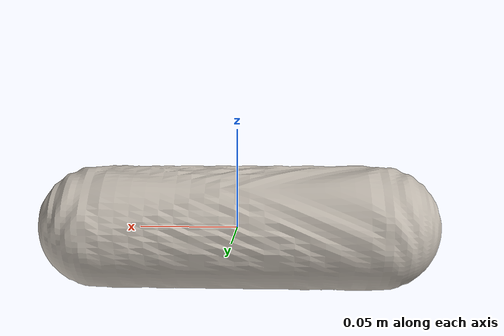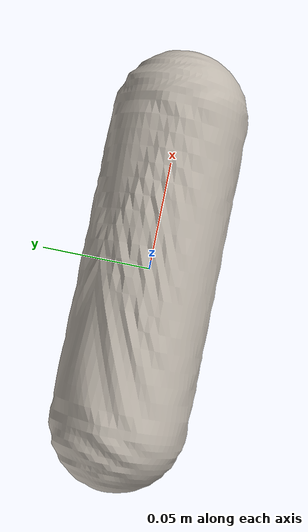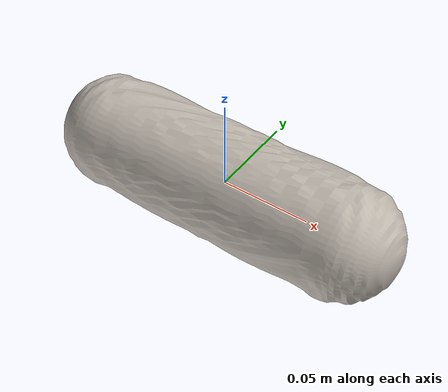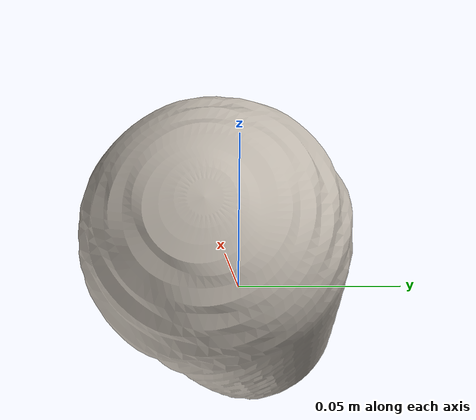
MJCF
<?xml version="1.0" ?>
<mujoco model="cold_cutting_1">
	<compiler angle="radian" meshdir="../meshes/" texturedir="../textures/" autolimits="true" inertiafromgeom="false"/>
	<default>
		<default class="cold_cutting_1_visual">
			<geom contype="0" conaffinity="0"/>
		</default>
		<default class="cold_cutting_1_collision">
			<geom rgba="0.9 0.9 0.9 0.0" />
		</default>
	</default>
	<asset>
		<mesh name="ColdCuttingMeat" file="obj/ColdCuttingMeat.obj" scale="1.0 1.0 1.0"/>
		<mesh name="ColdCuttingExodermis" file="obj/ColdCuttingExodermis.obj" scale="1.0 1.0 1.0"/>
		<material name="M_ColdCuttingMeat" texture="T_ColdCuttingMeat"/>
		<material name="M_ColdCuttingExodermis" texture="T_ColdCuttingExodermis"/>
		<texture name="T_ColdCuttingMeat" type="2d" file="T_ColdCuttingMeat.png"/>
		<texture name="T_ColdCuttingExodermis" type="2d" file="T_ColdCuttingExodermis.png"/>
	</asset>
	<asset>
		<mesh name="UCX_ColdCutting_001" file="stl/UCX_ColdCutting_001.stl" />
	</asset>
	<worldbody>
		<body name="cold_cutting_1" pos="0.0 0.0 0.0" quat="1.0 0.0 0.0 0.0">
			<freejoint />
			<body name="cold_cutting_meat" pos="0.0 0.0 0.0" quat="1.0 0.0 0.0 0.0">
				<inertial mass="0.5472894310951233" pos="-6.774790450858603e-11 -1.281197925528943e-10 -1.6847701012068228e-10" quat="0.9082376956939697 -0.418454647064209 -3.314617913474649e-08 -1.539701521835468e-08" diaginertia="0.0002485460427124053 0.001675912644714117 0.001675912644714117"/>
				<geom name="UCX_ColdCutting_001" type="mesh" mesh="UCX_ColdCutting_001" class="cold_cutting_1_collision"/>
				<geom name="ColdCuttingMeat" type="mesh" pos="0.0 0.0 0.0" quat="1.0 0.0 0.0 0.0" mesh="ColdCuttingMeat" material="M_ColdCuttingMeat" class="cold_cutting_1_visual"/>
			</body>
			<body name="cold_cutting_exodermis" pos="0.0 0.0 0.0" quat="1.0 0.0 0.0 0.0">
				<geom name="ColdCuttingExodermis" type="mesh" pos="0.0 0.0 0.0" quat="1.0 0.0 0.0 0.0" mesh="ColdCuttingExodermis" material="M_ColdCuttingExodermis" class="cold_cutting_1_visual"/>
			</body>
		</body>
	</worldbody>
	<equality/>
</mujoco>
